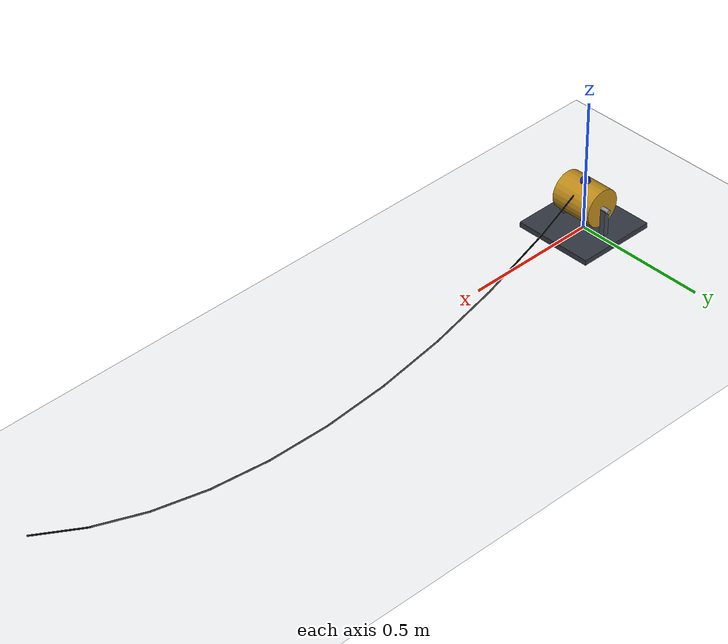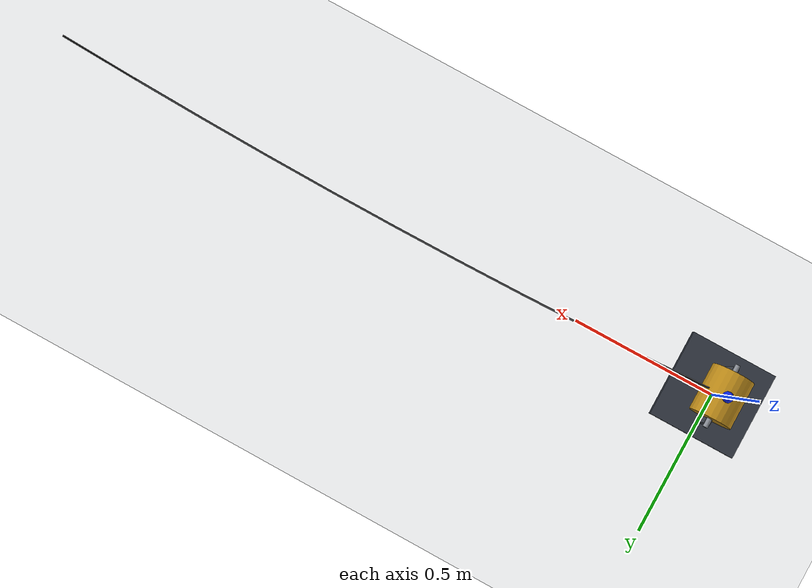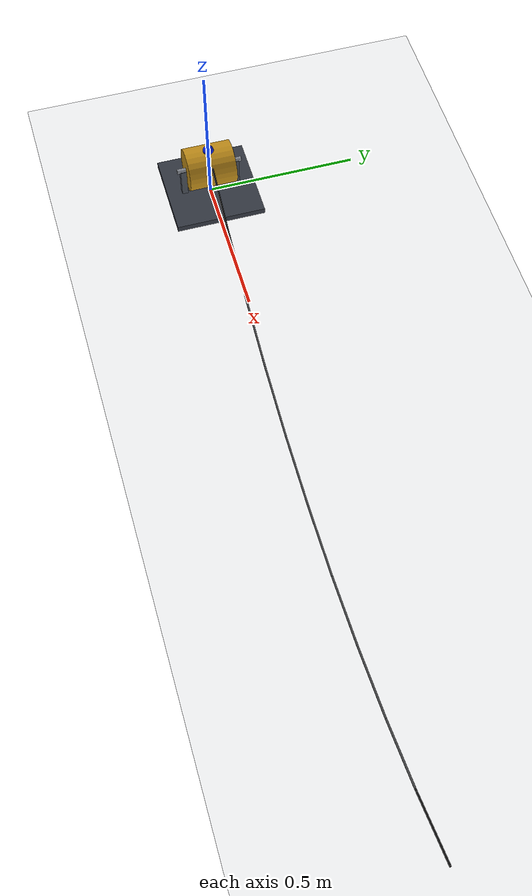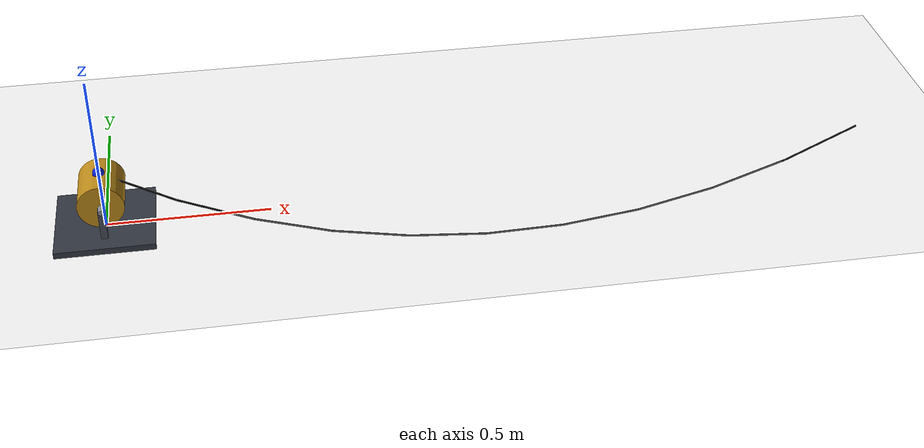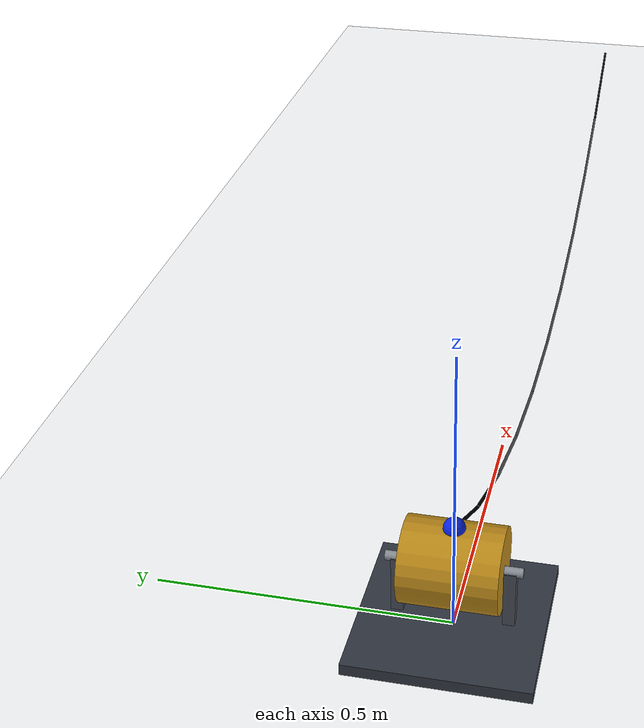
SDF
<?xml version="1.0" ?>
<sdf version="1.9">
  <world name="tms_inspect">
    <physics name="default" type="ode">
      <max_step_size>0.004</max_step_size>
      <real_time_factor>1.0</real_time_factor>
    </physics>
    <plugin filename="gz-sim-physics-system" name="gz::sim::systems::Physics"/>
    <plugin filename="gz-sim-user-commands-system" name="gz::sim::systems::UserCommands"/>
    <plugin filename="gz-sim-scene-broadcaster-system" name="gz::sim::systems::SceneBroadcaster"/>

    <scene>
      <ambient>0.65 0.65 0.68 1</ambient>
      <background>0.90 0.93 0.96 1</background>
      <grid>true</grid>
    </scene>

    <light type="directional" name="sun">
      <cast_shadows>true</cast_shadows>
      <pose>0 0 10 0 0 0</pose>
      <diffuse>0.95 0.95 0.95 1</diffuse>
      <specular>0.25 0.25 0.25 1</specular>
      <direction>-0.6 0.4 -0.9</direction>
    </light>

    <model name="ground_plane">
      <static>true</static>
      <link name="link">
        <collision name="collision">
          <geometry><plane><normal>0 0 1</normal><size>10 10</size></plane></geometry>
        </collision>
        <visual name="visual">
          <geometry><plane><normal>0 0 1</normal><size>10 10</size></plane></geometry>
          <material>
            <ambient>0.86 0.87 0.89 1</ambient>
            <diffuse>0.86 0.87 0.89 1</diffuse>
          </material>
        </visual>
      </link>
    </model>

    <include>
      <uri>model://tether_anchor_chain</uri>
      <name>tether_anchor_chain</name>
      <pose>0 0 0 0 0 0</pose>
    </include>

    <gui fullscreen="0">
      <plugin filename="MinimalScene" name="3D View">
        <gz-gui>
          <title>3D View</title>
          <property type="bool" key="showTitleBar">false</property>
          <property type="string" key="state">docked</property>
        </gz-gui>
        <engine>ogre</engine>
        <scene>scene</scene>
        <ambient_light>0.65 0.65 0.68</ambient_light>
        <background_color>0.90 0.93 0.96</background_color>
        <camera_pose>0.42 -0.42 0.30 0 0.42 2.356</camera_pose>
      </plugin>
      <plugin filename="GzSceneManager" name="Scene Manager">
        <gz-gui><property key="resizable" type="bool">false</property>
          <property key="width" type="double">5</property>
          <property key="height" type="double">5</property>
          <property key="state" type="string">floating</property>
          <property key="showTitleBar" type="bool">false</property></gz-gui>
      </plugin>
      <plugin filename="InteractiveViewControl" name="Interactive view control">
        <gz-gui><property key="resizable" type="bool">false</property>
          <property key="width" type="double">5</property>
          <property key="height" type="double">5</property>
          <property key="state" type="string">floating</property>
          <property key="showTitleBar" type="bool">false</property></gz-gui>
      </plugin>
      <plugin filename="CameraTracking" name="Camera Tracking">
        <gz-gui><property key="resizable" type="bool">false</property>
          <property key="width" type="double">5</property>
          <property key="height" type="double">5</property>
          <property key="state" type="string">floating</property>
          <property key="showTitleBar" type="bool">false</property></gz-gui>
      </plugin>
      <plugin filename="WorldControl" name="World control">
        <gz-gui><title>World control</title>
          <property type="bool" key="showTitleBar">false</property>
          <property type="bool" key="resizable">false</property>
          <property type="double" key="height">72</property>
          <property type="double" key="width">121</property>
          <property type="double" key="z">1</property>
          <property type="string" key="state">floating</property>
          <anchors target="3D View">
            <line own="left" target="left"/>
            <line own="bottom" target="bottom"/>
          </anchors></gz-gui>
        <play_pause>true</play_pause>
        <step>true</step>
        <start_paused>true</start_paused>
      </plugin>
      <plugin filename="WorldStats" name="World stats">
        <gz-gui><title>World stats</title>
          <property type="bool" key="showTitleBar">false</property>
          <property type="bool" key="resizable">false</property>
          <property type="double" key="height">110</property>
          <property type="double" key="width">290</property>
          <property type="double" key="z">1</property>
          <property type="string" key="state">floating</property>
          <anchors target="3D View">
            <line own="right" target="right"/>
            <line own="bottom" target="bottom"/>
          </anchors></gz-gui>
        <sim_time>true</sim_time>
        <real_time>true</real_time>
        <real_time_factor>true</real_time_factor>
        <iterations>true</iterations>
      </plugin>
      <plugin filename="EntityTree" name="Entity tree"/>
      <plugin filename="ComponentInspector" name="Component inspector"/>
    </gui>
  </world>
</sdf>

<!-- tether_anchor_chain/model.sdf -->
<sdf version="1.9">
  <model name="tether_anchor_chain">
    <static>false</static>
    <link name="ground_station_base">
      <pose>0 0 0 0 0 0</pose>
      <inertial>
        <mass>1.0</mass>
        <inertia>
          <ixx>1</ixx>
          <ixy>0</ixy>
          <ixz>0</ixz>
          <iyy>1</iyy>
          <iyz>0</iyz>
          <izz>1</izz>
        </inertia>
      </inertial>
      <visual name="ground_station_base_plate">
        <pose>0 0 0.01 0 0 0</pose>
        <geometry>
          <box>
            <size>0.3 0.3 0.02</size>
          </box>
        </geometry>
        <material>
          <diffuse>0.20 0.22 0.26 1.0</diffuse>
          <ambient>0.20 0.22 0.26 1.0</ambient>
        </material>
      </visual>
      <visual name="ground_station_base_post_left">
        <pose>0 0.09 0.07 0 0 0</pose>
        <geometry>
          <box>
            <size>0.02 0.02 0.1</size>
          </box>
        </geometry>
        <material>
          <diffuse>0.28 0.30 0.34 1.0</diffuse>
          <ambient>0.28 0.30 0.34 1.0</ambient>
        </material>
      </visual>
      <visual name="ground_station_base_post_right">
        <pose>0 -0.09 0.07 0 0 0</pose>
        <geometry>
          <box>
            <size>0.02 0.02 0.1</size>
          </box>
        </geometry>
        <material>
          <diffuse>0.28 0.30 0.34 1.0</diffuse>
          <ambient>0.28 0.30 0.34 1.0</ambient>
        </material>
      </visual>
      <visual name="ground_station_base_axle">
        <pose>0 0 0.12 1.57079632679 0 0</pose>
        <geometry>
          <cylinder>
            <radius>0.008</radius>
            <length>0.22</length>
          </cylinder>
        </geometry>
        <material>
          <diffuse>0.55 0.57 0.60 1.0</diffuse>
          <ambient>0.55 0.57 0.60 1.0</ambient>
        </material>
      </visual>

    </link>
    <joint name="ground_station_world_fixed" type="fixed">
      <parent>world</parent>
      <child>ground_station_base</child>
    </joint>
    <link name="reel_link">
      <pose relative_to="ground_station_base">0 0 0.12 0 0 0</pose>
      <inertial>
        <mass>0.2</mass>
        <inertia>
          <ixx>0.000671666667</ixx>
          <ixy>0</ixy>
          <ixz>0</ixz>
          <iyy>0.00049</iyy>
          <iyz>0</iyz>
          <izz>0.000671666667</izz>
        </inertia>
      </inertial>
      <visual name="reel_link_visual">
        <pose>0 0 0 1.57079632679 0 0</pose>
        <geometry>
          <cylinder>
            <radius>0.07</radius>
            <length>0.16</length>
          </cylinder>
        </geometry>
        <material>
          <diffuse>0.75 0.55 0.10 1.0</diffuse>
          <ambient>0.75 0.55 0.10 1.0</ambient>
        </material>
      </visual>
    </link>
    <joint name="reel_joint" type="revolute">
      <pose relative_to="reel_link">0 0 0 0 0 0</pose>
      <parent>ground_station_base</parent>
      <child>reel_link</child>
      <axis>
        <xyz>0 1 0</xyz>
        <limit>
          <lower>-1e16</lower>
          <upper>1e16</upper>
        </limit>
        <dynamics>
          <damping>0.005</damping>
          <friction>0</friction>
        </dynamics>
      </axis>
    </joint>
    <link name="tether_exit_point">
      <pose relative_to="ground_station_base">0 0 0.19 0 0 0</pose>
      <inertial>
        <mass>0.001</mass>
        <inertia>
          <ixx>1e-07</ixx>
          <ixy>0</ixy>
          <ixz>0</ixz>
          <iyy>1e-07</iyy>
          <iyz>0</iyz>
          <izz>1e-07</izz>
        </inertia>
      </inertial>
      <visual name="tether_exit_point_visual">
        <geometry>
          <sphere>
            <radius>0.018</radius>
          </sphere>
        </geometry>
        <material>
          <diffuse>0.05 0.15 0.9 1.0</diffuse>
          <ambient>0.05 0.15 0.9 1.0</ambient>
        </material>
      </visual>
    </link>
    <joint name="tether_exit_fixed" type="fixed">
      <parent>ground_station_base</parent>
      <child>tether_exit_point</child>
    </joint>

    <link name="tether_link_1">
      <pose relative_to="tether_exit_point">0 0 0 0 0.515539081 0</pose>
      <inertial>
        <pose>0.125 0 0 0 1.57079632679 0</pose>
        <mass>0.015</mass>
        <inertia>
          <ixx>6.75e-08</ixx>
          <ixy>0</ixy>
          <ixz>0</ixz>
          <iyy>7.815875e-05</iyy>
          <iyz>0</iyz>
          <izz>7.815875e-05</izz>
        </inertia>
      </inertial>
      <visual name="tether_link_1_visual">
        <pose>0.125 0 0 0 1.57079632679 0</pose>
        <geometry>
          <cylinder>
            <radius>0.003</radius>
            <length>0.25</length>
          </cylinder>
        </geometry>
        <material>
          <diffuse>0.02 0.02 0.02 1.0</diffuse>
          <ambient>0.02 0.02 0.02 1.0</ambient>
        </material>
      </visual>

      <collision name="tether_link_1_collision">
        <pose>0.125 0 0 0 1.57079632679 0</pose>
        <geometry>
          <cylinder>
            <radius>0.00225</radius>
            <length>0.25</length>
          </cylinder>
        </geometry>
      </collision>
    </link>
    <joint name="tether_joint_1" type="universal">
      <pose relative_to="tether_exit_point">0 0 0 0 0 0</pose>
      <parent>tether_exit_point</parent>
      <child>tether_link_1</child>
      <axis>
        <xyz expressed_in="tether_link_1">0 1 0</xyz>
        <limit>
          <lower>-1e+16</lower>
          <upper>1e+16</upper>
        </limit>
        <dynamics>
          <damping>0</damping>
          <friction>0</friction>
        </dynamics>
      </axis>
      <axis2>
        <xyz expressed_in="tether_link_1">0 -0 1</xyz>
        <limit>
          <lower>-1e+16</lower>
          <upper>1e+16</upper>
        </limit>
        <dynamics>
          <damping>0</damping>
          <friction>0</friction>
        </dynamics>
      </axis2>
    </joint>
    <link name="tether_link_2">
      <pose relative_to="tether_link_1">0.25 0 0 0 -0.106825735 0</pose>
      <inertial>
        <pose>0.125 0 0 0 1.57079632679 0</pose>
        <mass>0.015</mass>
        <inertia>
          <ixx>6.75e-08</ixx>
          <ixy>0</ixy>
          <ixz>0</ixz>
          <iyy>7.815875e-05</iyy>
          <iyz>0</iyz>
          <izz>7.815875e-05</izz>
        </inertia>
      </inertial>
      <visual name="tether_link_2_visual">
        <pose>0.125 0 0 0 1.57079632679 0</pose>
        <geometry>
          <cylinder>
            <radius>0.003</radius>
            <length>0.25</length>
          </cylinder>
        </geometry>
        <material>
          <diffuse>0.02 0.02 0.02 1.0</diffuse>
          <ambient>0.02 0.02 0.02 1.0</ambient>
        </material>
      </visual>

      <collision name="tether_link_2_collision">
        <pose>0.125 0 0 0 1.57079632679 0</pose>
        <geometry>
          <cylinder>
            <radius>0.00225</radius>
            <length>0.25</length>
          </cylinder>
        </geometry>
      </collision>
    </link>
    <joint name="tether_joint_2" type="universal">
      <pose relative_to="tether_link_1">0.25 0 0 0 0 0</pose>
      <parent>tether_link_1</parent>
      <child>tether_link_2</child>
      <axis>
        <xyz expressed_in="tether_link_2">0 1 0</xyz>
        <limit>
          <lower>-1e+16</lower>
          <upper>1e+16</upper>
        </limit>
        <dynamics>
          <damping>0</damping>
          <friction>0</friction>
        </dynamics>
      </axis>
      <axis2>
        <xyz expressed_in="tether_link_2">0 -0 1</xyz>
        <limit>
          <lower>-1e+16</lower>
          <upper>1e+16</upper>
        </limit>
        <dynamics>
          <damping>0</damping>
          <friction>0</friction>
        </dynamics>
      </axis2>
    </joint>
    <link name="tether_link_3">
      <pose relative_to="tether_link_2">0.25 0 0 0 -0.106825735 0</pose>
      <inertial>
        <pose>0.125 0 0 0 1.57079632679 0</pose>
        <mass>0.015</mass>
        <inertia>
          <ixx>6.75e-08</ixx>
          <ixy>0</ixy>
          <ixz>0</ixz>
          <iyy>7.815875e-05</iyy>
          <iyz>0</iyz>
          <izz>7.815875e-05</izz>
        </inertia>
      </inertial>
      <visual name="tether_link_3_visual">
        <pose>0.125 0 0 0 1.57079632679 0</pose>
        <geometry>
          <cylinder>
            <radius>0.003</radius>
            <length>0.25</length>
          </cylinder>
        </geometry>
        <material>
          <diffuse>0.02 0.02 0.02 1.0</diffuse>
          <ambient>0.02 0.02 0.02 1.0</ambient>
        </material>
      </visual>

      <collision name="tether_link_3_collision">
        <pose>0.125 0 0 0 1.57079632679 0</pose>
        <geometry>
          <cylinder>
            <radius>0.00225</radius>
            <length>0.25</length>
          </cylinder>
        </geometry>
      </collision>
    </link>
    <joint name="tether_joint_3" type="universal">
      <pose relative_to="tether_link_2">0.25 0 0 0 0 0</pose>
      <parent>tether_link_2</parent>
      <child>tether_link_3</child>
      <axis>
        <xyz expressed_in="tether_link_3">0 1 0</xyz>
        <limit>
          <lower>-1e+16</lower>
          <upper>1e+16</upper>
        </limit>
        <dynamics>
          <damping>0</damping>
          <friction>0</friction>
        </dynamics>
      </axis>
      <axis2>
        <xyz expressed_in="tether_link_3">0 -0 1</xyz>
        <limit>
          <lower>-1e+16</lower>
          <upper>1e+16</upper>
        </limit>
        <dynamics>
          <damping>0</damping>
          <friction>0</friction>
        </dynamics>
      </axis2>
    </joint>
    <link name="tether_link_4">
      <pose relative_to="tether_link_3">0.25 0 0 0 -0.106825735 0</pose>
      <inertial>
        <pose>0.125 0 0 0 1.57079632679 0</pose>
        <mass>0.015</mass>
        <inertia>
          <ixx>6.75e-08</ixx>
          <ixy>0</ixy>
          <ixz>0</ixz>
          <iyy>7.815875e-05</iyy>
          <iyz>0</iyz>
          <izz>7.815875e-05</izz>
        </inertia>
      </inertial>
      <visual name="tether_link_4_visual">
        <pose>0.125 0 0 0 1.57079632679 0</pose>
        <geometry>
          <cylinder>
            <radius>0.003</radius>
            <length>0.25</length>
          </cylinder>
        </geometry>
        <material>
          <diffuse>0.02 0.02 0.02 1.0</diffuse>
          <ambient>0.02 0.02 0.02 1.0</ambient>
        </material>
      </visual>

      <collision name="tether_link_4_collision">
        <pose>0.125 0 0 0 1.57079632679 0</pose>
        <geometry>
          <cylinder>
            <radius>0.00225</radius>
            <length>0.25</length>
          </cylinder>
        </geometry>
      </collision>
    </link>
    <joint name="tether_joint_4" type="universal">
      <pose relative_to="tether_link_3">0.25 0 0 0 0 0</pose>
      <parent>tether_link_3</parent>
      <child>tether_link_4</child>
      <axis>
        <xyz expressed_in="tether_link_4">0 1 0</xyz>
        <limit>
          <lower>-1e+16</lower>
          <upper>1e+16</upper>
        </limit>
        <dynamics>
          <damping>0</damping>
          <friction>0</friction>
        </dynamics>
      </axis>
      <axis2>
        <xyz expressed_in="tether_link_4">0 -0 1</xyz>
        <limit>
          <lower>-1e+16</lower>
          <upper>1e+16</upper>
        </limit>
        <dynamics>
          <damping>0</damping>
          <friction>0</friction>
        </dynamics>
      </axis2>
    </joint>
    <link name="tether_link_5">
      <pose relative_to="tether_link_4">0.25 0 0 0 -0.106825735 0</pose>
      <inertial>
        <pose>0.125 0 0 0 1.57079632679 0</pose>
        <mass>0.015</mass>
        <inertia>
          <ixx>6.75e-08</ixx>
          <ixy>0</ixy>
          <ixz>0</ixz>
          <iyy>7.815875e-05</iyy>
          <iyz>0</iyz>
          <izz>7.815875e-05</izz>
        </inertia>
      </inertial>
      <visual name="tether_link_5_visual">
        <pose>0.125 0 0 0 1.57079632679 0</pose>
        <geometry>
          <cylinder>
            <radius>0.003</radius>
            <length>0.25</length>
          </cylinder>
        </geometry>
        <material>
          <diffuse>0.02 0.02 0.02 1.0</diffuse>
          <ambient>0.02 0.02 0.02 1.0</ambient>
        </material>
      </visual>

      <collision name="tether_link_5_collision">
        <pose>0.125 0 0 0 1.57079632679 0</pose>
        <geometry>
          <cylinder>
            <radius>0.00225</radius>
            <length>0.25</length>
          </cylinder>
        </geometry>
      </collision>
    </link>
    <joint name="tether_joint_5" type="universal">
      <pose relative_to="tether_link_4">0.25 0 0 0 0 0</pose>
      <parent>tether_link_4</parent>
      <child>tether_link_5</child>
      <axis>
        <xyz expressed_in="tether_link_5">0 1 0</xyz>
        <limit>
          <lower>-1e+16</lower>
          <upper>1e+16</upper>
        </limit>
        <dynamics>
          <damping>0</damping>
          <friction>0</friction>
        </dynamics>
      </axis>
      <axis2>
        <xyz expressed_in="tether_link_5">0 -0 1</xyz>
        <limit>
          <lower>-1e+16</lower>
          <upper>1e+16</upper>
        </limit>
        <dynamics>
          <damping>0</damping>
          <friction>0</friction>
        </dynamics>
      </axis2>
    </joint>
    <link name="tether_link_6">
      <pose relative_to="tether_link_5">0.25 0 0 0 -0.106825735 0</pose>
      <inertial>
        <pose>0.125 0 0 0 1.57079632679 0</pose>
        <mass>0.015</mass>
        <inertia>
          <ixx>6.75e-08</ixx>
          <ixy>0</ixy>
          <ixz>0</ixz>
          <iyy>7.815875e-05</iyy>
          <iyz>0</iyz>
          <izz>7.815875e-05</izz>
        </inertia>
      </inertial>
      <visual name="tether_link_6_visual">
        <pose>0.125 0 0 0 1.57079632679 0</pose>
        <geometry>
          <cylinder>
            <radius>0.003</radius>
            <length>0.25</length>
          </cylinder>
        </geometry>
        <material>
          <diffuse>0.02 0.02 0.02 1.0</diffuse>
          <ambient>0.02 0.02 0.02 1.0</ambient>
        </material>
      </visual>

      <collision name="tether_link_6_collision">
        <pose>0.125 0 0 0 1.57079632679 0</pose>
        <geometry>
          <cylinder>
            <radius>0.00225</radius>
            <length>0.25</length>
          </cylinder>
        </geometry>
      </collision>
    </link>
    <joint name="tether_joint_6" type="universal">
      <pose relative_to="tether_link_5">0.25 0 0 0 0 0</pose>
      <parent>tether_link_5</parent>
      <child>tether_link_6</child>
      <axis>
        <xyz expressed_in="tether_link_6">0 1 0</xyz>
        <limit>
          <lower>-1e+16</lower>
          <upper>1e+16</upper>
        </limit>
        <dynamics>
          <damping>0</damping>
          <friction>0</friction>
        </dynamics>
      </axis>
      <axis2>
        <xyz expressed_in="tether_link_6">0 -0 1</xyz>
        <limit>
          <lower>-1e+16</lower>
          <upper>1e+16</upper>
        </limit>
        <dynamics>
          <damping>0</damping>
          <friction>0</friction>
        </dynamics>
      </axis2>
    </joint>
    <link name="tether_link_7">
      <pose relative_to="tether_link_6">0.25 0 0 0 -0.106825735 0</pose>
      <inertial>
        <pose>0.125 0 0 0 1.57079632679 0</pose>
        <mass>0.015</mass>
        <inertia>
          <ixx>6.75e-08</ixx>
          <ixy>0</ixy>
          <ixz>0</ixz>
          <iyy>7.815875e-05</iyy>
          <iyz>0</iyz>
          <izz>7.815875e-05</izz>
        </inertia>
      </inertial>
      <visual name="tether_link_7_visual">
        <pose>0.125 0 0 0 1.57079632679 0</pose>
        <geometry>
          <cylinder>
            <radius>0.003</radius>
            <length>0.25</length>
          </cylinder>
        </geometry>
        <material>
          <diffuse>0.02 0.02 0.02 1.0</diffuse>
          <ambient>0.02 0.02 0.02 1.0</ambient>
        </material>
      </visual>

      <collision name="tether_link_7_collision">
        <pose>0.125 0 0 0 1.57079632679 0</pose>
        <geometry>
          <cylinder>
            <radius>0.00225</radius>
            <length>0.25</length>
          </cylinder>
        </geometry>
      </collision>
    </link>
    <joint name="tether_joint_7" type="universal">
      <pose relative_to="tether_link_6">0.25 0 0 0 0 0</pose>
      <parent>tether_link_6</parent>
      <child>tether_link_7</child>
      <axis>
        <xyz expressed_in="tether_link_7">0 1 0</xyz>
        <limit>
          <lower>-1e+16</lower>
          <upper>1e+16</upper>
        </limit>
        <dynamics>
          <damping>0</damping>
          <friction>0</friction>
        </dynamics>
      </axis>
      <axis2>
        <xyz expressed_in="tether_link_7">0 -0 1</xyz>
        <limit>
          <lower>-1e+16</lower>
          <upper>1e+16</upper>
        </limit>
        <dynamics>
          <damping>0</damping>
          <friction>0</friction>
        </dynamics>
      </axis2>
    </joint>
    <link name="tether_link_8">
      <pose relative_to="tether_link_7">0.25 0 0 0 -0.106825735 0</pose>
      <inertial>
        <pose>0.125 0 0 0 1.57079632679 0</pose>
        <mass>0.015</mass>
        <inertia>
          <ixx>6.75e-08</ixx>
          <ixy>0</ixy>
          <ixz>0</ixz>
          <iyy>7.815875e-05</iyy>
          <iyz>0</iyz>
          <izz>7.815875e-05</izz>
        </inertia>
      </inertial>
      <visual name="tether_link_8_visual">
        <pose>0.125 0 0 0 1.57079632679 0</pose>
        <geometry>
          <cylinder>
            <radius>0.003</radius>
            <length>0.25</length>
          </cylinder>
        </geometry>
        <material>
          <diffuse>0.02 0.02 0.02 1.0</diffuse>
          <ambient>0.02 0.02 0.02 1.0</ambient>
        </material>
      </visual>

      <collision name="tether_link_8_collision">
        <pose>0.125 0 0 0 1.57079632679 0</pose>
        <geometry>
          <cylinder>
            <radius>0.00225</radius>
            <length>0.25</length>
          </cylinder>
        </geometry>
      </collision>
    </link>
    <joint name="tether_joint_8" type="universal">
      <pose relative_to="tether_link_7">0.25 0 0 0 0 0</pose>
      <parent>tether_link_7</parent>
      <child>tether_link_8</child>
      <axis>
        <xyz expressed_in="tether_link_8">0 1 0</xyz>
        <limit>
          <lower>-1e+16</lower>
          <upper>1e+16</upper>
        </limit>
        <dynamics>
          <damping>0</damping>
          <friction>0</friction>
        </dynamics>
      </axis>
      <axis2>
        <xyz expressed_in="tether_link_8">0 -0 1</xyz>
        <limit>
          <lower>-1e+16</lower>
          <upper>1e+16</upper>
        </limit>
        <dynamics>
          <damping>0</damping>
          <friction>0</friction>
        </dynamics>
      </axis2>
    </joint>
    <link name="tether_link_9">
      <pose relative_to="tether_link_8">0.25 0 0 0 -0.106825735 0</pose>
      <inertial>
        <pose>0.125 0 0 0 1.57079632679 0</pose>
        <mass>0.015</mass>
        <inertia>
          <ixx>6.75e-08</ixx>
          <ixy>0</ixy>
          <ixz>0</ixz>
          <iyy>7.815875e-05</iyy>
          <iyz>0</iyz>
          <izz>7.815875e-05</izz>
        </inertia>
      </inertial>
      <visual name="tether_link_9_visual">
        <pose>0.125 0 0 0 1.57079632679 0</pose>
        <geometry>
          <cylinder>
            <radius>0.003</radius>
            <length>0.25</length>
          </cylinder>
        </geometry>
        <material>
          <diffuse>0.02 0.02 0.02 1.0</diffuse>
          <ambient>0.02 0.02 0.02 1.0</ambient>
        </material>
      </visual>

      <collision name="tether_link_9_collision">
        <pose>0.125 0 0 0 1.57079632679 0</pose>
        <geometry>
          <cylinder>
            <radius>0.00225</radius>
            <length>0.25</length>
          </cylinder>
        </geometry>
      </collision>
    </link>
    <joint name="tether_joint_9" type="universal">
      <pose relative_to="tether_link_8">0.25 0 0 0 0 0</pose>
      <parent>tether_link_8</parent>
      <child>tether_link_9</child>
      <axis>
        <xyz expressed_in="tether_link_9">0 1 0</xyz>
        <limit>
          <lower>-1e+16</lower>
          <upper>1e+16</upper>
        </limit>
        <dynamics>
          <damping>0</damping>
          <friction>0</friction>
        </dynamics>
      </axis>
      <axis2>
        <xyz expressed_in="tether_link_9">0 -0 1</xyz>
        <limit>
          <lower>-1e+16</lower>
          <upper>1e+16</upper>
        </limit>
        <dynamics>
          <damping>0</damping>
          <friction>0</friction>
        </dynamics>
      </axis2>
    </joint>
    <link name="tether_link_10">
      <pose relative_to="tether_link_9">0.25 0 0 0 -0.106825735 0</pose>
      <inertial>
        <pose>0.125 0 0 0 1.57079632679 0</pose>
        <mass>0.015</mass>
        <inertia>
          <ixx>6.75e-08</ixx>
          <ixy>0</ixy>
          <ixz>0</ixz>
          <iyy>7.815875e-05</iyy>
          <iyz>0</iyz>
          <izz>7.815875e-05</izz>
        </inertia>
      </inertial>
      <visual name="tether_link_10_visual">
        <pose>0.125 0 0 0 1.57079632679 0</pose>
        <geometry>
          <cylinder>
            <radius>0.003</radius>
            <length>0.25</length>
          </cylinder>
        </geometry>
        <material>
          <diffuse>0.05 0.05 0.05 1.0</diffuse>
          <ambient>0.05 0.05 0.05 1.0</ambient>
        </material>
      </visual>

      <collision name="tether_link_10_collision">
        <pose>0.125 0 0 0 1.57079632679 0</pose>
        <geometry>
          <cylinder>
            <radius>0.00225</radius>
            <length>0.25</length>
          </cylinder>
        </geometry>
      </collision>
    </link>
    <joint name="tether_joint_10" type="universal">
      <pose relative_to="tether_link_9">0.25 0 0 0 0 0</pose>
      <parent>tether_link_9</parent>
      <child>tether_link_10</child>
      <axis>
        <xyz expressed_in="tether_link_10">0 1 0</xyz>
        <limit>
          <lower>-1e+16</lower>
          <upper>1e+16</upper>
        </limit>
        <dynamics>
          <damping>0</damping>
          <friction>0</friction>
        </dynamics>
      </axis>
      <axis2>
        <xyz expressed_in="tether_link_10">0 -0 1</xyz>
        <limit>
          <lower>-1e+16</lower>
          <upper>1e+16</upper>
        </limit>
        <dynamics>
          <damping>0</damping>
          <friction>0</friction>
        </dynamics>
      </axis2>
    </joint>
    <plugin filename="libTetherForceConstraint.so" name="drone_cabo::TetherForceConstraint">
      <drone_model>x500_tether_attach_0</drone_model>
      <drone_link>tether_attach_link</drone_link>
      <tether_model>tether_anchor_chain</tether_model>
      <tether_link>tether_link_10</tether_link>
      <anchor_joint>ground_station_world_fixed</anchor_joint>
      <exit_link>tether_exit_point</exit_link>
      <reel_joint>reel_joint</reel_joint>
      <tether_link_count>10</tether_link_count>
      <exit_segment_link>tether_link_1</exit_segment_link>
      <payout_link></payout_link>
      <drone_offset>0 0 0</drone_offset>
      <tether_offset>0.25 0 0</tether_offset>
      <stiffness>5</stiffness>
      <damping>0.5</damping>
      <max_force>3</max_force>
    </plugin>
    <plugin filename="libReelActuator.so" name="drone_cabo::ReelActuator">
      <reel_model>tether_anchor_chain</reel_model>
      <reel_joint>reel_joint</reel_joint>
      <tau_max>0.05</tau_max>
      <omega_max>12</omega_max>
      <ramp_rate>0.05</ramp_rate>
      <command_topic>/cabo/tms/reel_cmd</command_topic>
    </plugin>
  </model>
</sdf>
